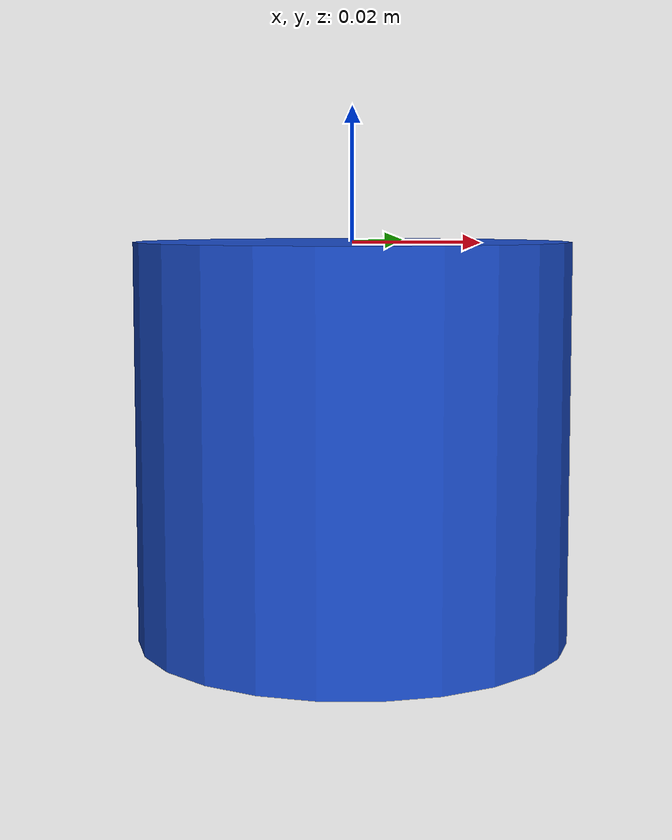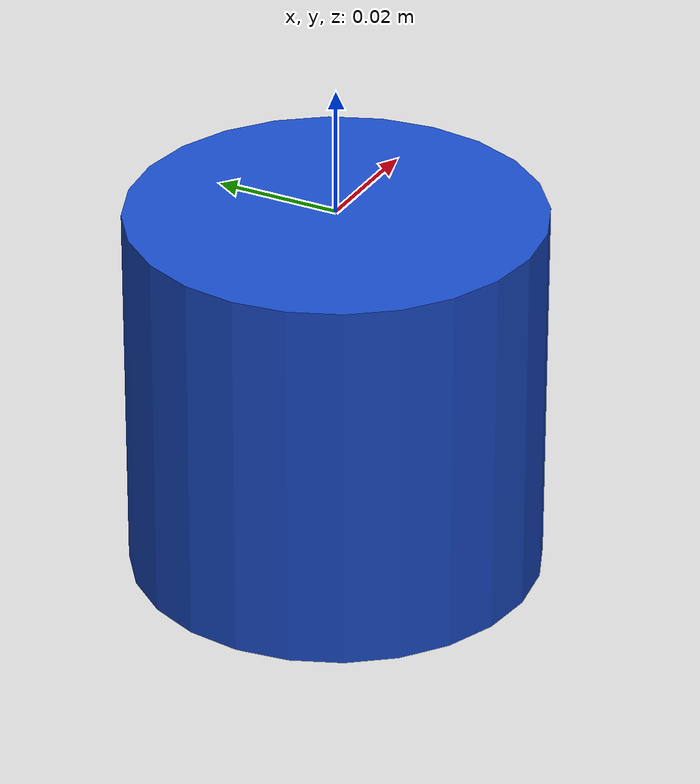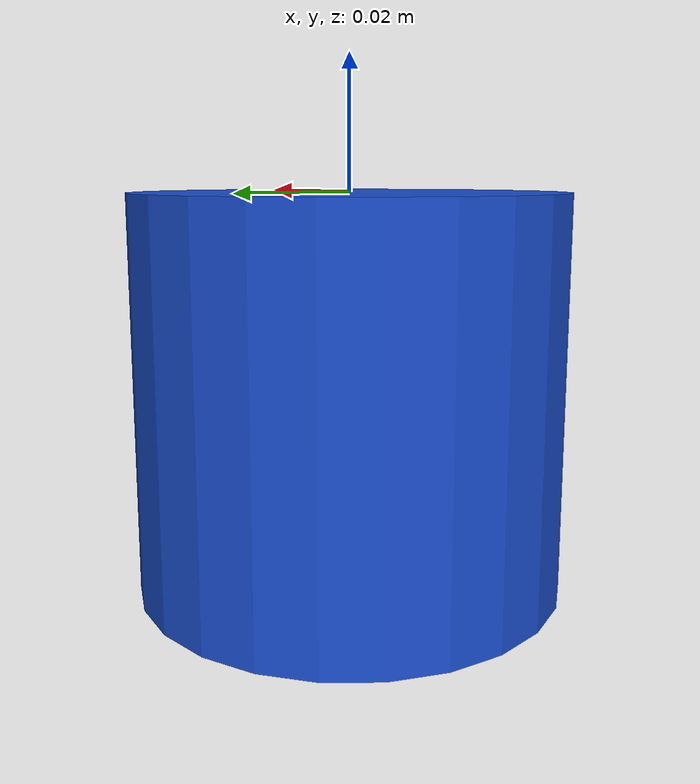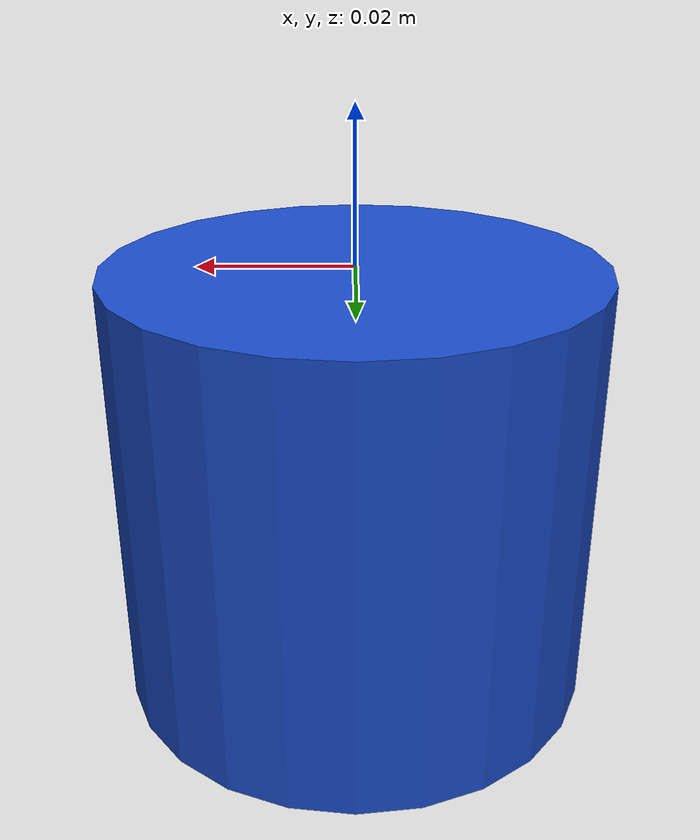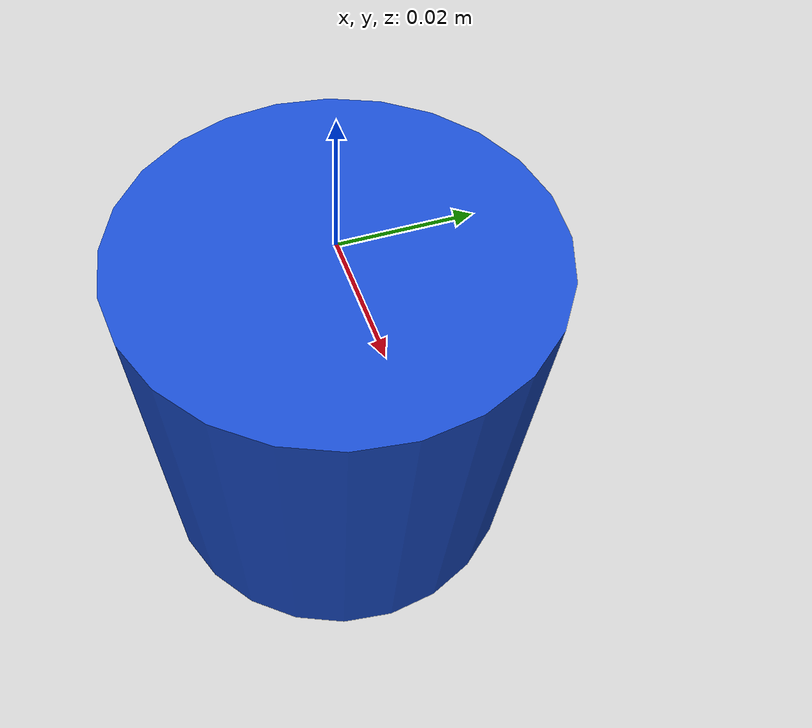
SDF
<?xml version="1.0" ?>
<sdf version="1.9">
<model name="livox_mid360">
    <link name="base">
        <inertial>
            <mass>0.265</mass>
            <inertia>
                <ixx>0.000149</ixx>
                <iyy>0.000149</iyy>
                <izz>0.000140</izz>
                <ixy>0</ixy>
                <ixz>0</ixz>
                <iyz>0</iyz>
            </inertia>
        </inertial>

        <visual name="visual">
            <pose>0 0 -0.03 0 0 0</pose>
            <geometry>
                <cylinder>
                    <radius>0.0325</radius>
                    <length>0.06</length>
                </cylinder>
            </geometry>
            <material>
                <diffuse>0.1 0.3 0.8 1</diffuse>
            </material>
        </visual>

        <collision name="collision">
            <pose>0 0 -0.03 0 0 0</pose>
            <geometry>
                <cylinder>
                    <radius>0.0325</radius>
                    <length>0.06</length>
                </cylinder>
            </geometry>
        </collision>

        <sensor name="livox_lidar" type="gpu_lidar">
            <pose>0 0 0 0 0 0</pose>
            <topic>/livox/lidar</topic>
            <update_rate>10</update_rate>
            <always_on>true</always_on>
            <visualize>false</visualize>
            <ray>
                <scan>
                    <horizontal>
                        <samples>500</samples>
                        <resolution>1</resolution>
                        <min_angle>-3.1415926</min_angle>
                        <max_angle>3.1415926</max_angle>
                    </horizontal>
                    <vertical>
                        <samples>40</samples>
                        <resolution>1</resolution>
                        <min_angle>-0.122173</min_angle>
                        <max_angle>0.907571</max_angle>
                    </vertical>
                </scan>
                <range>
                    <min>0.25</min>
                    <max>100.0</max>
                    <resolution>0.01</resolution>
                </range>
                <noise>
                    <type>gaussian</type>
                    <mean>0.0</mean>
                    <stddev>0.02</stddev>
                </noise>
            </ray>
        </sensor>

        <sensor name="livox_imu" type="imu">
            <pose>0.011 0.02329 -0.04412 0 0 0</pose>
            <topic>/livox/imu</topic>
            <update_rate>200</update_rate>
            <always_on>true</always_on>
            <visualize>false</visualize>
            <imu>
                <angular_velocity>
                    <x>
                        <noise type="gaussian">
                            <mean>0.0</mean>
                            <stddev>0.00111</stddev>
                            <bias_mean>0.0</bias_mean>
                            <bias_stddev>0.0001</bias_stddev>
                        </noise>
                    </x>
                    <y>
                        <noise type="gaussian">
                            <mean>0.0</mean>
                            <stddev>0.00111</stddev>
                            <bias_mean>0.0</bias_mean>
                            <bias_stddev>0.0001</bias_stddev>
                        </noise>
                        </y>
                    <z>
                        <noise type="gaussian">
                            <mean>0.0</mean>
                            <stddev>0.00111</stddev>
                            <bias_mean>0.0</bias_mean>
                            <bias_stddev>0.0001</bias_stddev>
                        </noise>
                    </z>
                </angular_velocity>
                <linear_acceleration>
                    <x>
                        <noise type="gaussian">
                            <mean>0.0</mean>
                            <stddev>0.01387</stddev>
                            <bias_mean>0.0</bias_mean>
                            <bias_stddev>0.001</bias_stddev>
                        </noise>
                    </x>
                    <y>
                        <noise type="gaussian">
                            <mean>0.0</mean>
                            <stddev>0.01387</stddev>
                            <bias_mean>0.0</bias_mean>
                            <bias_stddev>0.001</bias_stddev>
                        </noise>
                    </y>
                    <z>
                        <noise type="gaussian">
                            <mean>0.0</mean>
                            <stddev>0.01387</stddev>
                            <bias_mean>0.0</bias_mean>
                            <bias_stddev>0.001</bias_stddev>
                        </noise>
                    </z>
                </linear_acceleration>
            </imu>
        </sensor>
    </link>
</model>
</sdf>
